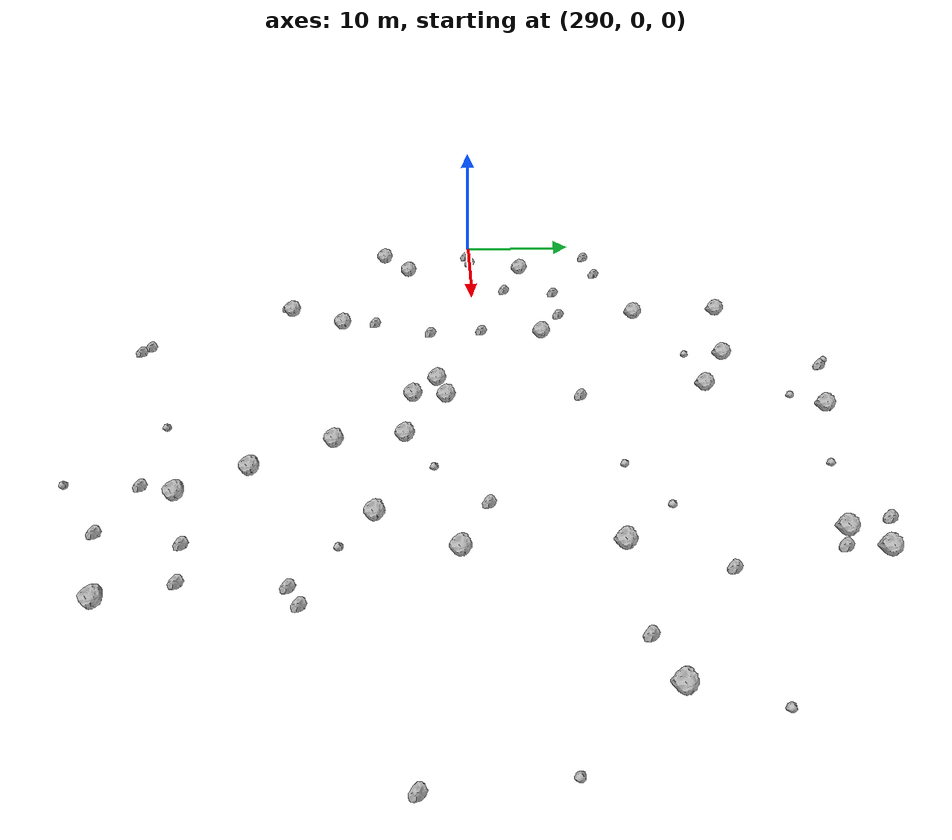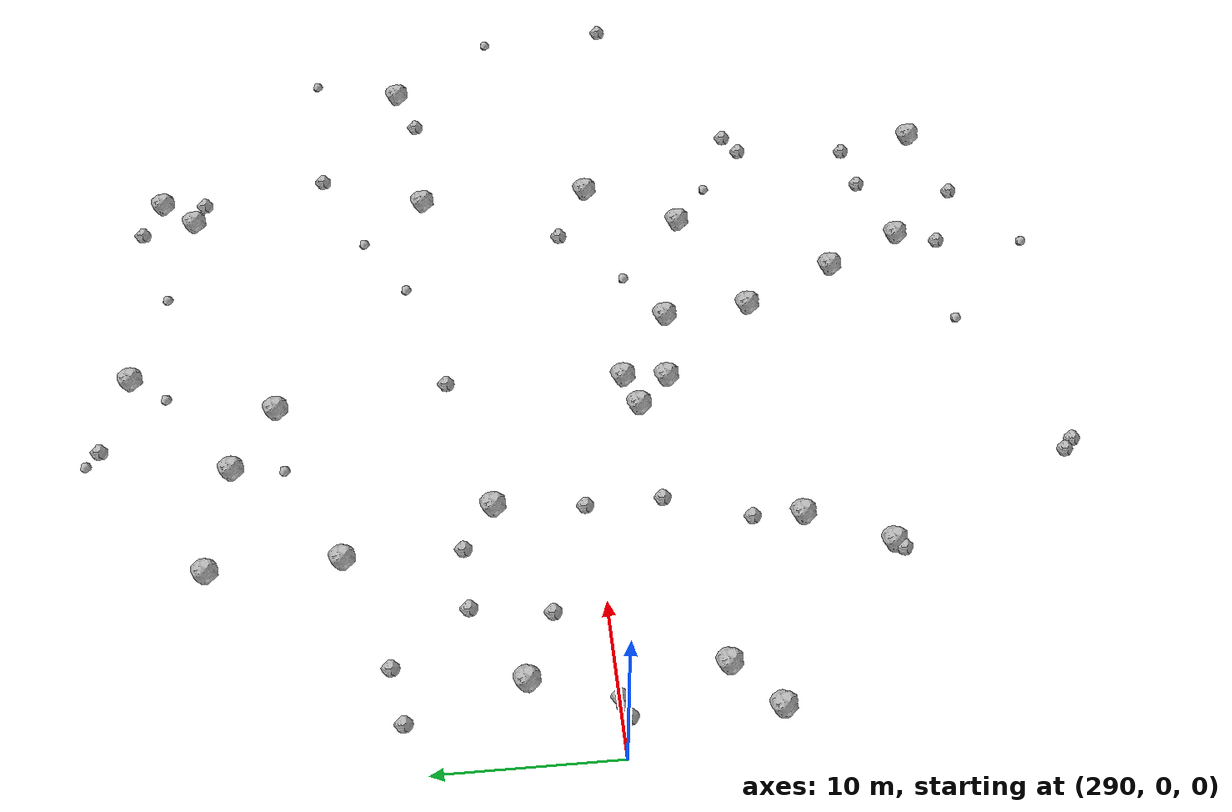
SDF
<sdf version="1.6">
 <world name="default">
  <include><uri>model://sun</uri></include>
  <model name="rock1_8_2">
   <include><uri>model://rock1</uri><pose>315.5210150104687 17.8189719744906 0.5 0 0 0</pose></include>
  </model>
  <model name="rock1_8_3">
   <include><uri>model://rock1</uri><pose>316.03697874762463 -5.169958007435213 0.5 0 0 0</pose></include>
  </model>
  <model name="rock1_8_4">
   <include><uri>model://rock1</uri><pose>324.4995701104523 -16.453823248261585 0.5 0 0 0</pose></include>
  </model>
  <model name="rock1_8_5">
   <include><uri>model://rock1</uri><pose>336.40047992865254 -23.83004446199482 0.5 0 0 0</pose></include>
  </model>
  <model name="rock1_8_6">
   <include><uri>model://rock1</uri><pose>307.05129445810957 5.695456277136472 0.5 0 0 0</pose></include>
  </model>
  <model name="rock1_8_7">
   <include><uri>model://rock1</uri><pose>321.5841417484256 -10.826496646554329 0.5 0 0 0</pose></include>
  </model>
  <model name="rock1_8_8">
   <include><uri>model://rock1</uri><pose>332.96697994995617 -1.9133945620973982 0.5 0 0 0</pose></include>
  </model>
  <model name="rock1_8_9">
   <include><uri>model://rock1</uri><pose>313.93408890288043 -3.2980209298735375 0.5 0 0 0</pose></include>
  </model>
  <model name="rock1_8_10">
   <include><uri>model://rock1</uri><pose>304.8775744616104 -11.442865945821268 0.5 0 0 0</pose></include>
  </model>
  <model name="rock1_8_11">
   <include><uri>model://rock1</uri><pose>332.1822997911412 23.06893138163923 0.5 0 0 0</pose></include>
  </model>
  <model name="rock1_8_12">
   <include><uri>model://rock1</uri><pose>295.2657951951921 -5.897041763755816 0.5 0 0 0</pose></include>
  </model>
  <model name="rock1_8_13">
   <include><uri>model://rock1</uri><pose>295.17493936102034 4.700422444371178 0.5 0 0 0</pose></include>
  </model>
  <model name="rock1_8_14">
   <include><uri>model://rock1</uri><pose>343.8321626581247 9.847564421603082 0.5 0 0 0</pose></include>
  </model>
  <model name="rock1_8_15">
   <include><uri>model://rock1</uri><pose>316.2698419224998 -2.602693860734469 0.5 0 0 0</pose></include>
  </model>
  <model name="rock1_8_16">
   <include><uri>model://rock1</uri><pose>304.09358807706826 14.118171997197251 0.5 0 0 0</pose></include>
  </model>
  <model name="rock1_8_17">
   <include><uri>model://rock1</uri><pose>292.33471858745116 -8.268067608657674 0.5 0 0 0</pose></include>
  </model>
  <model name="rock1_8_18">
   <include><uri>model://rock1</uri><pose>334.0691663223729 25.123429655630744 0.5 0 0 0</pose></include>
  </model>
  <model name="rock1_8_19">
   <include><uri>model://rock1</uri><pose>303.82607148140136 21.534355811184717 0.5 0 0 0</pose></include>
  </model>
  <model name="rock1_8_20">
   <include><uri>model://rock1</uri><pose>302.46327889371526 -16.086914866530506 0.5 0 0 0</pose></include>
  </model>
  <model name="rock1_8_21">
   <include><uri>model://rock1</uri><pose>326.9648140550647 -21.114749696439773 0.5 0 0 0</pose></include>
  </model>
  <model name="rock1_8_22">
   <include><uri>model://rock1</uri><pose>321.09824785299566 -5.682492453809363 0.5 0 0 0</pose></include>
  </model>
  <model name="rock1_8_23">
   <include><uri>model://rock1</uri><pose>318.6595944013616 26.36618291521318 0.5 0 0 0</pose></include>
  </model>
  <model name="rock1_8_24">
   <include><uri>model://rock1</uri><pose>329.4965596256422 -7.498196807710777 0.5 0 0 0</pose></include>
  </model>
  <model name="rock1_8_25">
   <include><uri>model://rock1</uri><pose>332.79814748295047 8.576821677726812 0.5 0 0 0</pose></include>
  </model>
  <model name="rock1_8_26">
   <include><uri>model://rock1</uri><pose>311.1053434444925 20.291653248659017 0.5 0 0 0</pose></include>
  </model>
  <model name="rock2_8_0">
   <include><uri>model://rock2</uri><pose>304.8940854855347 -8.617346070313477 0.3 0 0 0</pose></include>
  </model>
  <model name="rock2_8_1">
   <include><uri>model://rock2</uri><pose>306.6972881410326 -3.801956132717109 0.3 0 0 0</pose></include>
  </model>
  <model name="rock2_8_2">
   <include><uri>model://rock2</uri><pose>349.5192285278134 -4.421659813651907 0.3 0 0 0</pose></include>
  </model>
  <model name="rock2_8_3">
   <include><uri>model://rock2</uri><pose>293.01720996300855 11.155036935256845 0.3 0 0 0</pose></include>
  </model>
  <model name="rock2_8_4">
   <include><uri>model://rock2</uri><pose>335.3388149009173 14.888970164990049 0.3 0 0 0</pose></include>
  </model>
  <model name="rock2_8_5">
   <include><uri>model://rock2</uri><pose>313.11143256509445 27.81798307279039 0.3 0 0 0</pose></include>
  </model>
  <model name="rock2_8_6">
   <include><uri>model://rock2</uri><pose>308.8581541262611 -27.741914232831647 0.3 0 0 0</pose></include>
  </model>
  <model name="rock2_8_7">
   <include><uri>model://rock2</uri><pose>301.90927314438886 -16.557047004124442 0.3 0 0 0</pose></include>
  </model>
  <model name="rock2_8_8">
   <include><uri>model://rock2</uri><pose>333.7492843539287 22.45224106408145 0.3 0 0 0</pose></include>
  </model>
  <model name="rock2_8_9">
   <include><uri>model://rock2</uri><pose>326.074255996892 -23.58354481561284 0.3 0 0 0</pose></include>
  </model>
  <model name="rock2_8_10">
   <include><uri>model://rock2</uri><pose>331.2906899964457 26.27825922805045 0.3 0 0 0</pose></include>
  </model>
  <model name="rock2_8_11">
   <include><uri>model://rock2</uri><pose>337.28547577415804 -11.536408164064223 0.3 0 0 0</pose></include>
  </model>
  <model name="rock2_8_12">
   <include><uri>model://rock2</uri><pose>331.86178296219845 -19.575496214951418 0.3 0 0 0</pose></include>
  </model>
  <model name="rock2_8_13">
   <include><uri>model://rock2</uri><pose>296.53453291480906 11.712950827821444 0.3 0 0 0</pose></include>
  </model>
  <model name="rock2_8_14">
   <include><uri>model://rock2</uri><pose>304.068324161361 7.5040138558503315 0.3 0 0 0</pose></include>
  </model>
  <model name="rock2_8_15">
   <include><uri>model://rock2</uri><pose>300.0241066577636 7.430880549427471 0.3 0 0 0</pose></include>
  </model>
  <model name="rock2_8_16">
   <include><uri>model://rock2</uri><pose>330.61087758637336 -25.373651268620783 0.3 0 0 0</pose></include>
  </model>
  <model name="rock2_8_17">
   <include><uri>model://rock2</uri><pose>316.57806081741944 7.838400239298586 0.3 0 0 0</pose></include>
  </model>
  <model name="rock2_8_18">
   <include><uri>model://rock2</uri><pose>340.3375427813359 8.731484143081097 0.3 0 0 0</pose></include>
  </model>
  <model name="rock2_8_19">
   <include><uri>model://rock2</uri><pose>335.17771361771145 -19.159603136799646 0.3 0 0 0</pose></include>
  </model>
  <model name="rock2_8_20">
   <include><uri>model://rock2</uri><pose>335.8193293489402 -12.361832449551827 0.3 0 0 0</pose></include>
  </model>
  <model name="rock2_8_21">
   <include><uri>model://rock2</uri><pose>308.1266427674479 -27.148948642038363 0.3 0 0 0</pose></include>
  </model>
  <model name="rock2_8_22">
   <include><uri>model://rock2</uri><pose>328.7354691828443 0.11674658207788013 0.3 0 0 0</pose></include>
  </model>
  <model name="rock2_8_23">
   <include><uri>model://rock2</uri><pose>299.363148481778 2.9720207130639125 0.3 0 0 0</pose></include>
  </model>
  <model name="rock2_8_24">
   <include><uri>model://rock2</uri><pose>292.37601938609754 -0.3506873491858613 0.3 0 0 0</pose></include>
  </model>
  <model name="rock2_8_25">
   <include><uri>model://rock2</uri><pose>306.5337913938008 0.5630692873372318 0.3 0 0 0</pose></include>
  </model>
  <model name="rock2_8_26">
   <include><uri>model://rock2</uri><pose>293.6579295309119 0.017039123941405165 0.3 0 0 0</pose></include>
  </model>
  <model name="rock3_8_0">
   <include><uri>model://rock3</uri><pose>325.61013078006334 -28.947778879372994 0.2 0 0 0</pose></include>
  </model>
  <model name="rock3_8_1">
   <include><uri>model://rock3</uri><pose>293.1305118287519 -0.05075176488646349 0.2 0 0 0</pose></include>
  </model>
  <model name="rock3_8_2">
   <include><uri>model://rock3</uri><pose>312.11857042474264 28.50080369467441 0.2 0 0 0</pose></include>
  </model>
  <model name="rock3_8_3">
   <include><uri>model://rock3</uri><pose>329.24743635744323 12.334338289232512 0.2 0 0 0</pose></include>
  </model>
  <model name="rock3_8_4">
   <include><uri>model://rock3</uri><pose>325.34523743592877 24.450726602192617 0.2 0 0 0</pose></include>
  </model>
  <model name="rock3_8_5">
   <include><uri>model://rock3</uri><pose>310.7685144229908 17.251461638438947 0.2 0 0 0</pose></include>
  </model>
  <model name="rock3_8_6">
   <include><uri>model://rock3</uri><pose>319.26424030669233 -23.358871158707437 0.2 0 0 0</pose></include>
  </model>
  <model name="rock3_8_7">
   <include><uri>model://rock3</uri><pose>324.6241392545476 -3.572115278008667 0.2 0 0 0</pose></include>
  </model>
  <model name="rock3_8_8">
   <include><uri>model://rock3</uri><pose>316.96084898637804 24.184659902549953 0.2 0 0 0</pose></include>
  </model>
  <model name="rock3_8_9">
   <include><uri>model://rock3</uri><pose>348.9304489198406 3.5120790815101444 0.2 0 0 0</pose></include>
  </model>
  <model name="rock3_8_10">
   <include><uri>model://rock3</uri><pose>324.854227447006 9.866191740090308 0.2 0 0 0</pose></include>
  </model>
  <model name="rock3_8_11">
   <include><uri>model://rock3</uri><pose>345.395098330996 15.152359177449021 0.2 0 0 0</pose></include>
  </model>
  <model name="rock3_8_12">
   <include><uri>model://rock3</uri><pose>332.377869598243 -9.647818176909048 0.2 0 0 0</pose></include>
  </model>
 </world>
</sdf>
